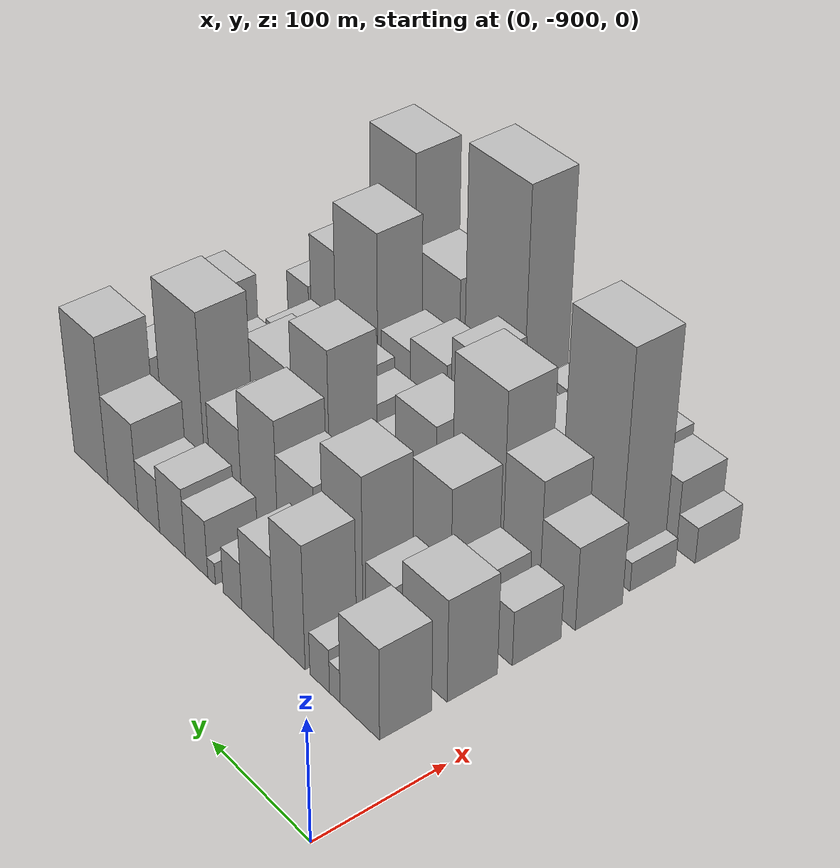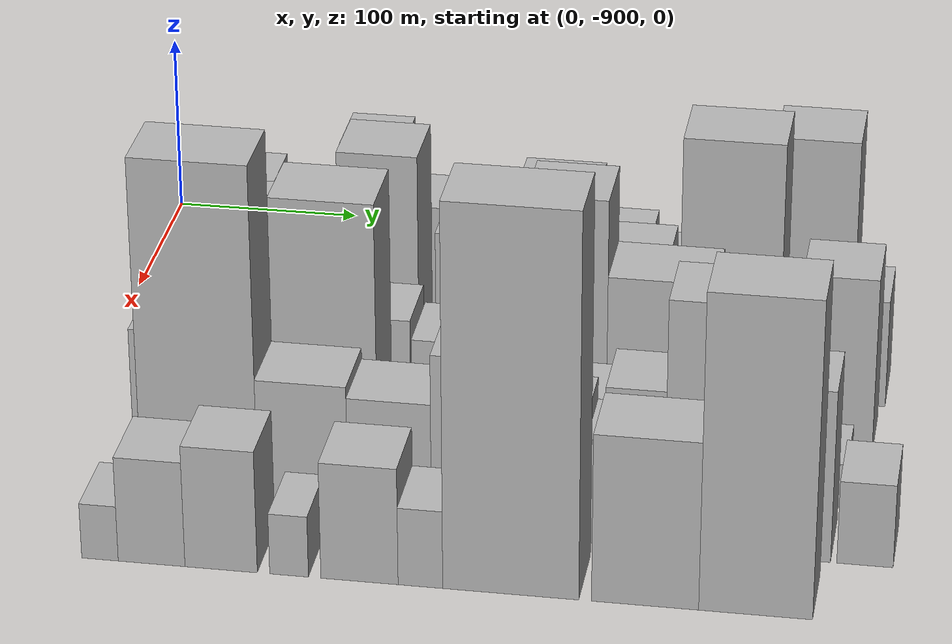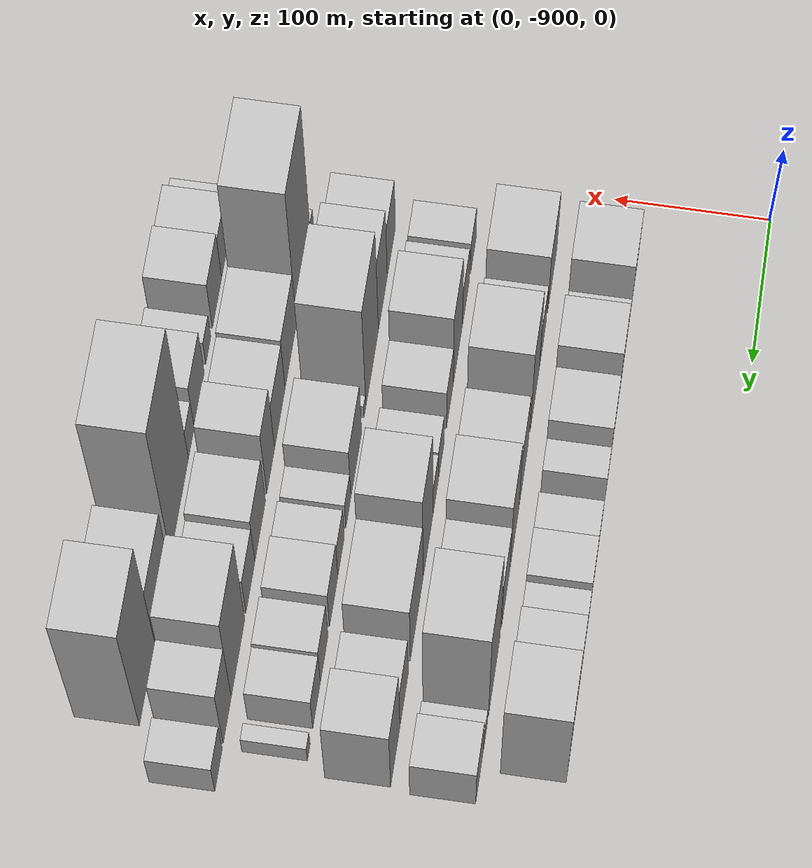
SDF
<sdf version="1.6">
 <world name="default">
  <model name="building_1">
   <static>1</static>
   <pose>100.0000 -840.2048 0 0.000000 0.000000 0.000000</pose>
   <link name="link">
    <pose>0 0 37.50 0 0 0</pose>
    <collision name="collision"><geometry><box><size>40.0000 39.5904 75.0000</size></box></geometry></collision>
    <visual name="visual">
     <cast_shadows>0</cast_shadows>
     <geometry><box><size>40.0000 39.5904 75.0000</size></box></geometry>
     <material>
      <script>
       <uri>model://HANNAS_wall/materials/scripts</uri>
       <uri>model://HANNAS_wall/materials/textures</uri>
       <name>vrc/HANNAS_wall</name>
      </script>
     </material>
    </visual>
   </link>
  </model>
  <model name="building_2">
   <static>1</static>
   <pose>100.0000 -814.9266 0 0.000000 0.000000 0.000000</pose>
   <link name="link">
    <pose>0 0 13.50 0 0 0</pose>
    <collision name="collision"><geometry><box><size>40.0000 10.9660 27.0000</size></box></geometry></collision>
    <visual name="visual">
     <cast_shadows>0</cast_shadows>
     <geometry><box><size>40.0000 10.9660 27.0000</size></box></geometry>
     <material>
      <script>
       <uri>model://HANNAS_wall/materials/scripts</uri>
       <uri>model://HANNAS_wall/materials/textures</uri>
       <name>vrc/HANNAS_wall</name>
      </script>
     </material>
    </visual>
   </link>
  </model>
  <model name="building_3">
   <static>1</static>
   <pose>100.0000 -799.1964 0 0.000000 0.000000 0.000000</pose>
   <link name="link">
    <pose>0 0 18.00 0 0 0</pose>
    <collision name="collision"><geometry><box><size>40.0000 20.4942 36.0000</size></box></geometry></collision>
    <visual name="visual">
     <cast_shadows>0</cast_shadows>
     <geometry><box><size>40.0000 20.4942 36.0000</size></box></geometry>
     <material>
      <script>
       <uri>model://HANNAS_wall/materials/scripts</uri>
       <uri>model://HANNAS_wall/materials/textures</uri>
       <name>vrc/HANNAS_wall</name>
      </script>
     </material>
    </visual>
   </link>
  </model>
  <model name="building_4">
   <static>1</static>
   <pose>100.0000 -767.1937 0 0.000000 0.000000 0.000000</pose>
   <link name="link">
    <pose>0 0 51.00 0 0 0</pose>
    <collision name="collision"><geometry><box><size>40.0000 33.5113 102.0000</size></box></geometry></collision>
    <visual name="visual">
     <cast_shadows>0</cast_shadows>
     <geometry><box><size>40.0000 33.5113 102.0000</size></box></geometry>
     <material>
      <script>
       <uri>model://HANNAS_wall/materials/scripts</uri>
       <uri>model://HANNAS_wall/materials/textures</uri>
       <name>vrc/HANNAS_wall</name>
      </script>
     </material>
    </visual>
   </link>
  </model>
  <model name="building_5">
   <static>1</static>
   <pose>100.0000 -732.7986 0 0.000000 0.000000 0.000000</pose>
   <link name="link">
    <pose>0 0 34.50 0 0 0</pose>
    <collision name="collision"><geometry><box><size>40.0000 35.2789 69.0000</size></box></geometry></collision>
    <visual name="visual">
     <cast_shadows>0</cast_shadows>
     <geometry><box><size>40.0000 35.2789 69.0000</size></box></geometry>
     <material>
      <script>
       <uri>model://HANNAS_wall/materials/scripts</uri>
       <uri>model://HANNAS_wall/materials/textures</uri>
       <name>vrc/HANNAS_wall</name>
      </script>
     </material>
    </visual>
   </link>
  </model>
  <model name="building_6">
   <static>1</static>
   <pose>100.0000 -704.6048 0 0.000000 0.000000 0.000000</pose>
   <link name="link">
    <pose>0 0 19.50 0 0 0</pose>
    <collision name="collision"><geometry><box><size>40.0000 21.1087 39.0000</size></box></geometry></collision>
    <visual name="visual">
     <cast_shadows>0</cast_shadows>
     <geometry><box><size>40.0000 21.1087 39.0000</size></box></geometry>
     <material>
      <script>
       <uri>model://HANNAS_wall/materials/scripts</uri>
       <uri>model://HANNAS_wall/materials/textures</uri>
       <name>vrc/HANNAS_wall</name>
      </script>
     </material>
    </visual>
   </link>
  </model>
  <model name="building_7">
   <static>1</static>
   <pose>100.0000 -680.6913 0 0.000000 0.000000 0.000000</pose>
   <link name="link">
    <pose>0 0 9.00 0 0 0</pose>
    <collision name="collision"><geometry><box><size>40.0000 8.7182 18.0000</size></box></geometry></collision>
    <visual name="visual">
     <cast_shadows>0</cast_shadows>
     <geometry><box><size>40.0000 8.7182 18.0000</size></box></geometry>
     <material>
      <script>
       <uri>model://HANNAS_wall/materials/scripts</uri>
       <uri>model://HANNAS_wall/materials/textures</uri>
       <name>vrc/HANNAS_wall</name>
      </script>
     </material>
    </visual>
   </link>
  </model>
  <model name="building_8">
   <static>1</static>
   <pose>100.0000 -663.1396 0 0.000000 0.000000 0.000000</pose>
   <link name="link">
    <pose>0 0 24.00 0 0 0</pose>
    <collision name="collision"><geometry><box><size>40.0000 26.3853 48.0000</size></box></geometry></collision>
    <visual name="visual">
     <cast_shadows>0</cast_shadows>
     <geometry><box><size>40.0000 26.3853 48.0000</size></box></geometry>
     <material>
      <script>
       <uri>model://HANNAS_wall/materials/scripts</uri>
       <uri>model://HANNAS_wall/materials/textures</uri>
       <name>vrc/HANNAS_wall</name>
      </script>
     </material>
    </visual>
   </link>
  </model>
  <model name="building_9">
   <static>1</static>
   <pose>100.0000 -634.6680 0 0.000000 0.000000 0.000000</pose>
   <link name="link">
    <pose>0 0 28.50 0 0 0</pose>
    <collision name="collision"><geometry><box><size>40.0000 30.5580 57.0000</size></box></geometry></collision>
    <visual name="visual">
     <cast_shadows>0</cast_shadows>
     <geometry><box><size>40.0000 30.5580 57.0000</size></box></geometry>
     <material>
      <script>
       <uri>model://HANNAS_wall/materials/scripts</uri>
       <uri>model://HANNAS_wall/materials/textures</uri>
       <name>vrc/HANNAS_wall</name>
      </script>
     </material>
    </visual>
   </link>
  </model>
  <model name="building_10">
   <static>1</static>
   <pose>100.0000 -606.2961 0 0.000000 0.000000 0.000000</pose>
   <link name="link">
    <pose>0 0 22.50 0 0 0</pose>
    <collision name="collision"><geometry><box><size>40.0000 26.1857 45.0000</size></box></geometry></collision>
    <visual name="visual">
     <cast_shadows>0</cast_shadows>
     <geometry><box><size>40.0000 26.1857 45.0000</size></box></geometry>
     <material>
      <script>
       <uri>model://HANNAS_wall/materials/scripts</uri>
       <uri>model://HANNAS_wall/materials/textures</uri>
       <name>vrc/HANNAS_wall</name>
      </script>
     </material>
    </visual>
   </link>
  </model>
  <model name="building_11">
   <static>1</static>
   <pose>100.0000 -574.1782 0 0.000000 0.000000 0.000000</pose>
   <link name="link">
    <pose>0 0 37.50 0 0 0</pose>
    <collision name="collision"><geometry><box><size>40.0000 38.0501 75.0000</size></box></geometry></collision>
    <visual name="visual">
     <cast_shadows>0</cast_shadows>
     <geometry><box><size>40.0000 38.0501 75.0000</size></box></geometry>
     <material>
      <script>
       <uri>model://HANNAS_wall/materials/scripts</uri>
       <uri>model://HANNAS_wall/materials/textures</uri>
       <name>vrc/HANNAS_wall</name>
      </script>
     </material>
    </visual>
   </link>
  </model>
  <model name="building_12">
   <static>1</static>
   <pose>100.0000 -533.4060 0 0.000000 0.000000 0.000000</pose>
   <link name="link">
    <pose>0 0 61.50 0 0 0</pose>
    <collision name="collision"><geometry><box><size>40.0000 43.4944 123.0000</size></box></geometry></collision>
    <visual name="visual">
     <cast_shadows>0</cast_shadows>
     <geometry><box><size>40.0000 43.4944 123.0000</size></box></geometry>
     <material>
      <script>
       <uri>model://HANNAS_wall/materials/scripts</uri>
       <uri>model://HANNAS_wall/materials/textures</uri>
       <name>vrc/HANNAS_wall</name>
      </script>
     </material>
    </visual>
   </link>
  </model>
  <model name="building_52">
   <static>1</static>
   <pose>152.0000 -837.6055 0 0.000000 0.000000 0.000000</pose>
   <link name="link">
    <pose>0 0 42.00 0 0 0</pose>
    <collision name="collision"><geometry><box><size>40.0000 44.7890 84.0000</size></box></geometry></collision>
    <visual name="visual">
     <cast_shadows>0</cast_shadows>
     <geometry><box><size>40.0000 44.7890 84.0000</size></box></geometry>
     <material>
      <script>
       <uri>model://HANNAS_wall/materials/scripts</uri>
       <uri>model://HANNAS_wall/materials/textures</uri>
       <name>vrc/HANNAS_wall</name>
      </script>
     </material>
    </visual>
   </link>
  </model>
  <model name="building_53">
   <static>1</static>
   <pose>152.0000 -793.0308 0 0.000000 0.000000 0.000000</pose>
   <link name="link">
    <pose>0 0 28.50 0 0 0</pose>
    <collision name="collision"><geometry><box><size>40.0000 30.3604 57.0000</size></box></geometry></collision>
    <visual name="visual">
     <cast_shadows>0</cast_shadows>
     <geometry><box><size>40.0000 30.3604 57.0000</size></box></geometry>
     <material>
      <script>
       <uri>model://HANNAS_wall/materials/scripts</uri>
       <uri>model://HANNAS_wall/materials/textures</uri>
       <name>vrc/HANNAS_wall</name>
      </script>
     </material>
    </visual>
   </link>
  </model>
  <model name="building_54">
   <static>1</static>
   <pose>152.0000 -753.9375 0 0.000000 0.000000 0.000000</pose>
   <link name="link">
    <pose>0 0 61.50 0 0 0</pose>
    <collision name="collision"><geometry><box><size>40.0000 41.8262 123.0000</size></box></geometry></collision>
    <visual name="visual">
     <cast_shadows>0</cast_shadows>
     <geometry><box><size>40.0000 41.8262 123.0000</size></box></geometry>
     <material>
      <script>
       <uri>model://HANNAS_wall/materials/scripts</uri>
       <uri>model://HANNAS_wall/materials/textures</uri>
       <name>vrc/HANNAS_wall</name>
      </script>
     </material>
    </visual>
   </link>
  </model>
  <model name="building_55">
   <static>1</static>
   <pose>152.0000 -703.2747 0 0.000000 0.000000 0.000000</pose>
   <link name="link">
    <pose>0 0 40.50 0 0 0</pose>
    <collision name="collision"><geometry><box><size>40.0000 41.4992 81.0000</size></box></geometry></collision>
    <visual name="visual">
     <cast_shadows>0</cast_shadows>
     <geometry><box><size>40.0000 41.4992 81.0000</size></box></geometry>
     <material>
      <script>
       <uri>model://HANNAS_wall/materials/scripts</uri>
       <uri>model://HANNAS_wall/materials/textures</uri>
       <name>vrc/HANNAS_wall</name>
      </script>
     </material>
    </visual>
   </link>
  </model>
  <model name="building_56">
   <static>1</static>
   <pose>152.0000 -661.7789 0 0.000000 0.000000 0.000000</pose>
   <link name="link">
    <pose>0 0 54.00 0 0 0</pose>
    <collision name="collision"><geometry><box><size>40.0000 41.4925 108.0000</size></box></geometry></collision>
    <visual name="visual">
     <cast_shadows>0</cast_shadows>
     <geometry><box><size>40.0000 41.4925 108.0000</size></box></geometry>
     <material>
      <script>
       <uri>model://HANNAS_wall/materials/scripts</uri>
       <uri>model://HANNAS_wall/materials/textures</uri>
       <name>vrc/HANNAS_wall</name>
      </script>
     </material>
    </visual>
   </link>
  </model>
  <model name="building_57">
   <static>1</static>
   <pose>152.0000 -622.2637 0 0.000000 0.000000 0.000000</pose>
   <link name="link">
    <pose>0 0 37.50 0 0 0</pose>
    <collision name="collision"><geometry><box><size>40.0000 37.5379 75.0000</size></box></geometry></collision>
    <visual name="visual">
     <cast_shadows>0</cast_shadows>
     <geometry><box><size>40.0000 37.5379 75.0000</size></box></geometry>
     <material>
      <script>
       <uri>model://HANNAS_wall/materials/scripts</uri>
       <uri>model://HANNAS_wall/materials/textures</uri>
       <name>vrc/HANNAS_wall</name>
      </script>
     </material>
    </visual>
   </link>
  </model>
  <model name="building_58">
   <static>1</static>
   <pose>152.0000 -571.5455 0 0.000000 0.000000 0.000000</pose>
   <link name="link">
    <pose>0 0 72.00 0 0 0</pose>
    <collision name="collision"><geometry><box><size>40.0000 51.8986 144.0000</size></box></geometry></collision>
    <visual name="visual">
     <cast_shadows>0</cast_shadows>
     <geometry><box><size>40.0000 51.8986 144.0000</size></box></geometry>
     <material>
      <script>
       <uri>model://HANNAS_wall/materials/scripts</uri>
       <uri>model://HANNAS_wall/materials/textures</uri>
       <name>vrc/HANNAS_wall</name>
      </script>
     </material>
    </visual>
   </link>
  </model>
  <model name="building_59">
   <static>1</static>
   <pose>152.0000 -532.0537 0 0.000000 0.000000 0.000000</pose>
   <link name="link">
    <pose>0 0 15.00 0 0 0</pose>
    <collision name="collision"><geometry><box><size>40.0000 17.0849 30.0000</size></box></geometry></collision>
    <visual name="visual">
     <cast_shadows>0</cast_shadows>
     <geometry><box><size>40.0000 17.0849 30.0000</size></box></geometry>
     <material>
      <script>
       <uri>model://HANNAS_wall/materials/scripts</uri>
       <uri>model://HANNAS_wall/materials/textures</uri>
       <name>vrc/HANNAS_wall</name>
      </script>
     </material>
    </visual>
   </link>
  </model>
  <model name="building_60">
   <static>1</static>
   <pose>152.0000 -507.1141 0 0.000000 0.000000 0.000000</pose>
   <link name="link">
    <pose>0 0 30.00 0 0 0</pose>
    <collision name="collision"><geometry><box><size>40.0000 32.7944 60.0000</size></box></geometry></collision>
    <visual name="visual">
     <cast_shadows>0</cast_shadows>
     <geometry><box><size>40.0000 32.7944 60.0000</size></box></geometry>
     <material>
      <script>
       <uri>model://HANNAS_wall/materials/scripts</uri>
       <uri>model://HANNAS_wall/materials/textures</uri>
       <name>vrc/HANNAS_wall</name>
      </script>
     </material>
    </visual>
   </link>
  </model>
  <model name="building_101">
   <static>1</static>
   <pose>204.0000 -847.4146 0 0.000000 0.000000 0.000000</pose>
   <link name="link">
    <pose>0 0 22.50 0 0 0</pose>
    <collision name="collision"><geometry><box><size>40.0000 25.1708 45.0000</size></box></geometry></collision>
    <visual name="visual">
     <cast_shadows>0</cast_shadows>
     <geometry><box><size>40.0000 25.1708 45.0000</size></box></geometry>
     <material>
      <script>
       <uri>model://HANNAS_wall/materials/scripts</uri>
       <uri>model://HANNAS_wall/materials/textures</uri>
       <name>vrc/HANNAS_wall</name>
      </script>
     </material>
    </visual>
   </link>
  </model>
  <model name="building_102">
   <static>1</static>
   <pose>204.0000 -813.6594 0 0.000000 0.000000 0.000000</pose>
   <link name="link">
    <pose>0 0 25.50 0 0 0</pose>
    <collision name="collision"><geometry><box><size>40.0000 30.3396 51.0000</size></box></geometry></collision>
    <visual name="visual">
     <cast_shadows>0</cast_shadows>
     <geometry><box><size>40.0000 30.3396 51.0000</size></box></geometry>
     <material>
      <script>
       <uri>model://HANNAS_wall/materials/scripts</uri>
       <uri>model://HANNAS_wall/materials/textures</uri>
       <name>vrc/HANNAS_wall</name>
      </script>
     </material>
    </visual>
   </link>
  </model>
  <model name="building_103">
   <static>1</static>
   <pose>204.0000 -778.3625 0 0.000000 0.000000 0.000000</pose>
   <link name="link">
    <pose>0 0 51.00 0 0 0</pose>
    <collision name="collision"><geometry><box><size>40.0000 40.2543 102.0000</size></box></geometry></collision>
    <visual name="visual">
     <cast_shadows>0</cast_shadows>
     <geometry><box><size>40.0000 40.2543 102.0000</size></box></geometry>
     <material>
      <script>
       <uri>model://HANNAS_wall/materials/scripts</uri>
       <uri>model://HANNAS_wall/materials/textures</uri>
       <name>vrc/HANNAS_wall</name>
      </script>
     </material>
    </visual>
   </link>
  </model>
  <model name="building_104">
   <static>1</static>
   <pose>204.0000 -743.1347 0 0.000000 0.000000 0.000000</pose>
   <link name="link">
    <pose>0 0 28.50 0 0 0</pose>
    <collision name="collision"><geometry><box><size>40.0000 30.2014 57.0000</size></box></geometry></collision>
    <visual name="visual">
     <cast_shadows>0</cast_shadows>
     <geometry><box><size>40.0000 30.2014 57.0000</size></box></geometry>
     <material>
      <script>
       <uri>model://HANNAS_wall/materials/scripts</uri>
       <uri>model://HANNAS_wall/materials/textures</uri>
       <name>vrc/HANNAS_wall</name>
      </script>
     </material>
    </visual>
   </link>
  </model>
  <model name="building_105">
   <static>1</static>
   <pose>204.0000 -705.7703 0 0.000000 0.000000 0.000000</pose>
   <link name="link">
    <pose>0 0 22.50 0 0 0</pose>
    <collision name="collision"><geometry><box><size>40.0000 24.5274 45.0000</size></box></geometry></collision>
    <visual name="visual">
     <cast_shadows>0</cast_shadows>
     <geometry><box><size>40.0000 24.5274 45.0000</size></box></geometry>
     <material>
      <script>
       <uri>model://HANNAS_wall/materials/scripts</uri>
       <uri>model://HANNAS_wall/materials/textures</uri>
       <name>vrc/HANNAS_wall</name>
      </script>
     </material>
    </visual>
   </link>
  </model>
  <model name="building_106">
   <static>1</static>
   <pose>204.0000 -681.5198 0 0.000000 0.000000 0.000000</pose>
   <link name="link">
    <pose>0 0 21.00 0 0 0</pose>
    <collision name="collision"><geometry><box><size>40.0000 23.9736 42.0000</size></box></geometry></collision>
    <visual name="visual">
     <cast_shadows>0</cast_shadows>
     <geometry><box><size>40.0000 23.9736 42.0000</size></box></geometry>
     <material>
      <script>
       <uri>model://HANNAS_wall/materials/scripts</uri>
       <uri>model://HANNAS_wall/materials/textures</uri>
       <name>vrc/HANNAS_wall</name>
      </script>
     </material>
    </visual>
   </link>
  </model>
  <model name="building_107">
   <static>1</static>
   <pose>204.0000 -648.7119 0 0.000000 0.000000 0.000000</pose>
   <link name="link">
    <pose>0 0 66.00 0 0 0</pose>
    <collision name="collision"><geometry><box><size>40.0000 41.6421 132.0000</size></box></geometry></collision>
    <visual name="visual">
     <cast_shadows>0</cast_shadows>
     <geometry><box><size>40.0000 41.6421 132.0000</size></box></geometry>
     <material>
      <script>
       <uri>model://HANNAS_wall/materials/scripts</uri>
       <uri>model://HANNAS_wall/materials/textures</uri>
       <name>vrc/HANNAS_wall</name>
      </script>
     </material>
    </visual>
   </link>
  </model>
  <model name="building_108">
   <static>1</static>
   <pose>204.0000 -600.9972 0 0.000000 0.000000 0.000000</pose>
   <link name="link">
    <pose>0 0 45.00 0 0 0</pose>
    <collision name="collision"><geometry><box><size>40.0000 53.7873 90.0000</size></box></geometry></collision>
    <visual name="visual">
     <cast_shadows>0</cast_shadows>
     <geometry><box><size>40.0000 53.7873 90.0000</size></box></geometry>
     <material>
      <script>
       <uri>model://HANNAS_wall/materials/scripts</uri>
       <uri>model://HANNAS_wall/materials/textures</uri>
       <name>vrc/HANNAS_wall</name>
      </script>
     </material>
    </visual>
   </link>
  </model>
  <model name="building_109">
   <static>1</static>
   <pose>204.0000 -548.8163 0 0.000000 0.000000 0.000000</pose>
   <link name="link">
    <pose>0 0 31.50 0 0 0</pose>
    <collision name="collision"><geometry><box><size>40.0000 34.5743 63.0000</size></box></geometry></collision>
    <visual name="visual">
     <cast_shadows>0</cast_shadows>
     <geometry><box><size>40.0000 34.5743 63.0000</size></box></geometry>
     <material>
      <script>
       <uri>model://HANNAS_wall/materials/scripts</uri>
       <uri>model://HANNAS_wall/materials/textures</uri>
       <name>vrc/HANNAS_wall</name>
      </script>
     </material>
    </visual>
   </link>
  </model>
  <model name="building_110">
   <static>1</static>
   <pose>204.0000 -512.5766 0 0.000000 0.000000 0.000000</pose>
   <link name="link">
    <pose>0 0 49.50 0 0 0</pose>
    <collision name="collision"><geometry><box><size>40.0000 37.9052 99.0000</size></box></geometry></collision>
    <visual name="visual">
     <cast_shadows>0</cast_shadows>
     <geometry><box><size>40.0000 37.9052 99.0000</size></box></geometry>
     <material>
      <script>
       <uri>model://HANNAS_wall/materials/scripts</uri>
       <uri>model://HANNAS_wall/materials/textures</uri>
       <name>vrc/HANNAS_wall</name>
      </script>
     </material>
    </visual>
   </link>
  </model>
  <model name="building_151">
   <static>1</static>
   <pose>256.0000 -842.4005 0 0.000000 0.000000 0.000000</pose>
   <link name="link">
    <pose>0 0 34.50 0 0 0</pose>
    <collision name="collision"><geometry><box><size>40.0000 35.1991 69.0000</size></box></geometry></collision>
    <visual name="visual">
     <cast_shadows>0</cast_shadows>
     <geometry><box><size>40.0000 35.1991 69.0000</size></box></geometry>
     <material>
      <script>
       <uri>model://HANNAS_wall/materials/scripts</uri>
       <uri>model://HANNAS_wall/materials/textures</uri>
       <name>vrc/HANNAS_wall</name>
      </script>
     </material>
    </visual>
   </link>
  </model>
  <model name="building_152">
   <static>1</static>
   <pose>256.0000 -806.2439 0 0.000000 0.000000 0.000000</pose>
   <link name="link">
    <pose>0 0 49.50 0 0 0</pose>
    <collision name="collision"><geometry><box><size>40.0000 37.1141 99.0000</size></box></geometry></collision>
    <visual name="visual">
     <cast_shadows>0</cast_shadows>
     <geometry><box><size>40.0000 37.1141 99.0000</size></box></geometry>
     <material>
      <script>
       <uri>model://HANNAS_wall/materials/scripts</uri>
       <uri>model://HANNAS_wall/materials/textures</uri>
       <name>vrc/HANNAS_wall</name>
      </script>
     </material>
    </visual>
   </link>
  </model>
  <model name="building_153">
   <static>1</static>
   <pose>256.0000 -761.5578 0 0.000000 0.000000 0.000000</pose>
   <link name="link">
    <pose>0 0 73.50 0 0 0</pose>
    <collision name="collision"><geometry><box><size>40.0000 52.2581 147.0000</size></box></geometry></collision>
    <visual name="visual">
     <cast_shadows>0</cast_shadows>
     <geometry><box><size>40.0000 52.2581 147.0000</size></box></geometry>
     <material>
      <script>
       <uri>model://HANNAS_wall/materials/scripts</uri>
       <uri>model://HANNAS_wall/materials/textures</uri>
       <name>vrc/HANNAS_wall</name>
      </script>
     </material>
    </visual>
   </link>
  </model>
  <model name="building_154">
   <static>1</static>
   <pose>256.0000 -731.6071 0 0.000000 0.000000 0.000000</pose>
   <link name="link">
    <pose>0 0 9.00 0 0 0</pose>
    <collision name="collision"><geometry><box><size>40.0000 7.6433 18.0000</size></box></geometry></collision>
    <visual name="visual">
     <cast_shadows>0</cast_shadows>
     <geometry><box><size>40.0000 7.6433 18.0000</size></box></geometry>
     <material>
      <script>
       <uri>model://HANNAS_wall/materials/scripts</uri>
       <uri>model://HANNAS_wall/materials/textures</uri>
       <name>vrc/HANNAS_wall</name>
      </script>
     </material>
    </visual>
   </link>
  </model>
  <model name="building_155">
   <static>1</static>
   <pose>256.0000 -695.9349 0 0.000000 0.000000 0.000000</pose>
   <link name="link">
    <pose>0 0 37.50 0 0 0</pose>
    <collision name="collision"><geometry><box><size>40.0000 43.7011 75.0000</size></box></geometry></collision>
    <visual name="visual">
     <cast_shadows>0</cast_shadows>
     <geometry><box><size>40.0000 43.7011 75.0000</size></box></geometry>
     <material>
      <script>
       <uri>model://HANNAS_wall/materials/scripts</uri>
       <uri>model://HANNAS_wall/materials/textures</uri>
       <name>vrc/HANNAS_wall</name>
      </script>
     </material>
    </visual>
   </link>
  </model>
  <model name="building_156">
   <static>1</static>
   <pose>256.0000 -663.7842 0 0.000000 0.000000 0.000000</pose>
   <link name="link">
    <pose>0 0 19.50 0 0 0</pose>
    <collision name="collision"><geometry><box><size>40.0000 20.6002 39.0000</size></box></geometry></collision>
    <visual name="visual">
     <cast_shadows>0</cast_shadows>
     <geometry><box><size>40.0000 20.6002 39.0000</size></box></geometry>
     <material>
      <script>
       <uri>model://HANNAS_wall/materials/scripts</uri>
       <uri>model://HANNAS_wall/materials/textures</uri>
       <name>vrc/HANNAS_wall</name>
      </script>
     </material>
    </visual>
   </link>
  </model>
  <model name="building_157">
   <static>1</static>
   <pose>256.0000 -634.5247 0 0.000000 0.000000 0.000000</pose>
   <link name="link">
    <pose>0 0 24.00 0 0 0</pose>
    <collision name="collision"><geometry><box><size>40.0000 25.9189 48.0000</size></box></geometry></collision>
    <visual name="visual">
     <cast_shadows>0</cast_shadows>
     <geometry><box><size>40.0000 25.9189 48.0000</size></box></geometry>
     <material>
      <script>
       <uri>model://HANNAS_wall/materials/scripts</uri>
       <uri>model://HANNAS_wall/materials/textures</uri>
       <name>vrc/HANNAS_wall</name>
      </script>
     </material>
    </visual>
   </link>
  </model>
  <model name="building_158">
   <static>1</static>
   <pose>256.0000 -605.0497 0 0.000000 0.000000 0.000000</pose>
   <link name="link">
    <pose>0 0 28.50 0 0 0</pose>
    <collision name="collision"><geometry><box><size>40.0000 33.0310 57.0000</size></box></geometry></collision>
    <visual name="visual">
     <cast_shadows>0</cast_shadows>
     <geometry><box><size>40.0000 33.0310 57.0000</size></box></geometry>
     <material>
      <script>
       <uri>model://HANNAS_wall/materials/scripts</uri>
       <uri>model://HANNAS_wall/materials/textures</uri>
       <name>vrc/HANNAS_wall</name>
      </script>
     </material>
    </visual>
   </link>
  </model>
  <model name="building_159">
   <static>1</static>
   <pose>256.0000 -567.5535 0 0.000000 0.000000 0.000000</pose>
   <link name="link">
    <pose>0 0 28.50 0 0 0</pose>
    <collision name="collision"><geometry><box><size>40.0000 29.9615 57.0000</size></box></geometry></collision>
    <visual name="visual">
     <cast_shadows>0</cast_shadows>
     <geometry><box><size>40.0000 29.9615 57.0000</size></box></geometry>
     <material>
      <script>
       <uri>model://HANNAS_wall/materials/scripts</uri>
       <uri>model://HANNAS_wall/materials/textures</uri>
       <name>vrc/HANNAS_wall</name>
      </script>
     </material>
    </visual>
   </link>
  </model>
  <model name="building_160">
   <static>1</static>
   <pose>256.0000 -537.9096 0 0.000000 0.000000 0.000000</pose>
   <link name="link">
    <pose>0 0 25.50 0 0 0</pose>
    <collision name="collision"><geometry><box><size>40.0000 29.3264 51.0000</size></box></geometry></collision>
    <visual name="visual">
     <cast_shadows>0</cast_shadows>
     <geometry><box><size>40.0000 29.3264 51.0000</size></box></geometry>
     <material>
      <script>
       <uri>model://HANNAS_wall/materials/scripts</uri>
       <uri>model://HANNAS_wall/materials/textures</uri>
       <name>vrc/HANNAS_wall</name>
      </script>
     </material>
    </visual>
   </link>
  </model>
  <model name="building_161">
   <static>1</static>
   <pose>256.0000 -507.9276 0 0.000000 0.000000 0.000000</pose>
   <link name="link">
    <pose>0 0 12.00 0 0 0</pose>
    <collision name="collision"><geometry><box><size>40.0000 10.6376 24.0000</size></box></geometry></collision>
    <visual name="visual">
     <cast_shadows>0</cast_shadows>
     <geometry><box><size>40.0000 10.6376 24.0000</size></box></geometry>
     <material>
      <script>
       <uri>model://HANNAS_wall/materials/scripts</uri>
       <uri>model://HANNAS_wall/materials/textures</uri>
       <name>vrc/HANNAS_wall</name>
      </script>
     </material>
    </visual>
   </link>
  </model>
  <model name="building_202">
   <static>1</static>
   <pose>308.0000 -848.4929 0 0.000000 0.000000 0.000000</pose>
   <link name="link">
    <pose>0 0 12.00 0 0 0</pose>
    <collision name="collision"><geometry><box><size>40.0000 11.0143 24.0000</size></box></geometry></collision>
    <visual name="visual">
     <cast_shadows>0</cast_shadows>
     <geometry><box><size>40.0000 11.0143 24.0000</size></box></geometry>
     <material>
      <script>
       <uri>model://HANNAS_wall/materials/scripts</uri>
       <uri>model://HANNAS_wall/materials/textures</uri>
       <name>vrc/HANNAS_wall</name>
      </script>
     </material>
    </visual>
   </link>
  </model>
  <model name="building_203">
   <static>1</static>
   <pose>308.0000 -813.9056 0 0.000000 0.000000 0.000000</pose>
   <link name="link">
    <pose>0 0 94.50 0 0 0</pose>
    <collision name="collision"><geometry><box><size>40.0000 58.1603 189.0000</size></box></geometry></collision>
    <visual name="visual">
     <cast_shadows>0</cast_shadows>
     <geometry><box><size>40.0000 58.1603 189.0000</size></box></geometry>
     <material>
      <script>
       <uri>model://HANNAS_wall/materials/scripts</uri>
       <uri>model://HANNAS_wall/materials/textures</uri>
       <name>vrc/HANNAS_wall</name>
      </script>
     </material>
    </visual>
   </link>
  </model>
  <model name="building_204">
   <static>1</static>
   <pose>308.0000 -762.4992 0 0.000000 0.000000 0.000000</pose>
   <link name="link">
    <pose>0 0 37.50 0 0 0</pose>
    <collision name="collision"><geometry><box><size>40.0000 44.6525 75.0000</size></box></geometry></collision>
    <visual name="visual">
     <cast_shadows>0</cast_shadows>
     <geometry><box><size>40.0000 44.6525 75.0000</size></box></geometry>
     <material>
      <script>
       <uri>model://HANNAS_wall/materials/scripts</uri>
       <uri>model://HANNAS_wall/materials/textures</uri>
       <name>vrc/HANNAS_wall</name>
      </script>
     </material>
    </visual>
   </link>
  </model>
  <model name="building_205">
   <static>1</static>
   <pose>308.0000 -719.6796 0 0.000000 0.000000 0.000000</pose>
   <link name="link">
    <pose>0 0 34.50 0 0 0</pose>
    <collision name="collision"><geometry><box><size>40.0000 40.9866 69.0000</size></box></geometry></collision>
    <visual name="visual">
     <cast_shadows>0</cast_shadows>
     <geometry><box><size>40.0000 40.9866 69.0000</size></box></geometry>
     <material>
      <script>
       <uri>model://HANNAS_wall/materials/scripts</uri>
       <uri>model://HANNAS_wall/materials/textures</uri>
       <name>vrc/HANNAS_wall</name>
      </script>
     </material>
    </visual>
   </link>
  </model>
  <model name="building_206">
   <static>1</static>
   <pose>308.0000 -684.0709 0 0.000000 0.000000 0.000000</pose>
   <link name="link">
    <pose>0 0 48.00 0 0 0</pose>
    <collision name="collision"><geometry><box><size>40.0000 30.2308 96.0000</size></box></geometry></collision>
    <visual name="visual">
     <cast_shadows>0</cast_shadows>
     <geometry><box><size>40.0000 30.2308 96.0000</size></box></geometry>
     <material>
      <script>
       <uri>model://HANNAS_wall/materials/scripts</uri>
       <uri>model://HANNAS_wall/materials/textures</uri>
       <name>vrc/HANNAS_wall</name>
      </script>
     </material>
    </visual>
   </link>
  </model>
  <model name="building_207">
   <static>1</static>
   <pose>308.0000 -643.8758 0 0.000000 0.000000 0.000000</pose>
   <link name="link">
    <pose>0 0 34.50 0 0 0</pose>
    <collision name="collision"><geometry><box><size>40.0000 40.1595 69.0000</size></box></geometry></collision>
    <visual name="visual">
     <cast_shadows>0</cast_shadows>
     <geometry><box><size>40.0000 40.1595 69.0000</size></box></geometry>
     <material>
      <script>
       <uri>model://HANNAS_wall/materials/scripts</uri>
       <uri>model://HANNAS_wall/materials/textures</uri>
       <name>vrc/HANNAS_wall</name>
      </script>
     </material>
    </visual>
   </link>
  </model>
  <model name="building_208">
   <static>1</static>
   <pose>308.0000 -606.8368 0 0.000000 0.000000 0.000000</pose>
   <link name="link">
    <pose>0 0 28.50 0 0 0</pose>
    <collision name="collision"><geometry><box><size>40.0000 33.9184 57.0000</size></box></geometry></collision>
    <visual name="visual">
     <cast_shadows>0</cast_shadows>
     <geometry><box><size>40.0000 33.9184 57.0000</size></box></geometry>
     <material>
      <script>
       <uri>model://HANNAS_wall/materials/scripts</uri>
       <uri>model://HANNAS_wall/materials/textures</uri>
       <name>vrc/HANNAS_wall</name>
      </script>
     </material>
    </visual>
   </link>
  </model>
  <model name="building_209">
   <static>1</static>
   <pose>308.0000 -560.7116 0 0.000000 0.000000 0.000000</pose>
   <link name="link">
    <pose>0 0 67.50 0 0 0</pose>
    <collision name="collision"><geometry><box><size>40.0000 50.3319 135.0000</size></box></geometry></collision>
    <visual name="visual">
     <cast_shadows>0</cast_shadows>
     <geometry><box><size>40.0000 50.3319 135.0000</size></box></geometry>
     <material>
      <script>
       <uri>model://HANNAS_wall/materials/scripts</uri>
       <uri>model://HANNAS_wall/materials/textures</uri>
       <name>vrc/HANNAS_wall</name>
      </script>
     </material>
    </visual>
   </link>
  </model>
  <model name="building_210">
   <static>1</static>
   <pose>308.0000 -520.6116 0 0.000000 0.000000 0.000000</pose>
   <link name="link">
    <pose>0 0 46.50 0 0 0</pose>
    <collision name="collision"><geometry><box><size>40.0000 29.8681 93.0000</size></box></geometry></collision>
    <visual name="visual">
     <cast_shadows>0</cast_shadows>
     <geometry><box><size>40.0000 29.8681 93.0000</size></box></geometry>
     <material>
      <script>
       <uri>model://HANNAS_wall/materials/scripts</uri>
       <uri>model://HANNAS_wall/materials/textures</uri>
       <name>vrc/HANNAS_wall</name>
      </script>
     </material>
    </visual>
   </link>
  </model>
  <model name="building_211">
   <static>1</static>
   <pose>308.0000 -489.2294 0 0.000000 0.000000 0.000000</pose>
   <link name="link">
    <pose>0 0 22.50 0 0 0</pose>
    <collision name="collision"><geometry><box><size>40.0000 26.8963 45.0000</size></box></geometry></collision>
    <visual name="visual">
     <cast_shadows>0</cast_shadows>
     <geometry><box><size>40.0000 26.8963 45.0000</size></box></geometry>
     <material>
      <script>
       <uri>model://HANNAS_wall/materials/scripts</uri>
       <uri>model://HANNAS_wall/materials/textures</uri>
       <name>vrc/HANNAS_wall</name>
      </script>
     </material>
    </visual>
   </link>
  </model>
  <model name="building_251">
   <static>1</static>
   <pose>360.0000 -851.0437 0 0.000000 0.000000 0.000000</pose>
   <link name="link">
    <pose>0 0 15.00 0 0 0</pose>
    <collision name="collision"><geometry><box><size>40.0000 17.9126 30.0000</size></box></geometry></collision>
    <visual name="visual">
     <cast_shadows>0</cast_shadows>
     <geometry><box><size>40.0000 17.9126 30.0000</size></box></geometry>
     <material>
      <script>
       <uri>model://HANNAS_wall/materials/scripts</uri>
       <uri>model://HANNAS_wall/materials/textures</uri>
       <name>vrc/HANNAS_wall</name>
      </script>
     </material>
    </visual>
   </link>
  </model>
  <model name="building_252">
   <static>1</static>
   <pose>360.0000 -825.7474 0 0.000000 0.000000 0.000000</pose>
   <link name="link">
    <pose>0 0 28.50 0 0 0</pose>
    <collision name="collision"><geometry><box><size>40.0000 32.6800 57.0000</size></box></geometry></collision>
    <visual name="visual">
     <cast_shadows>0</cast_shadows>
     <geometry><box><size>40.0000 32.6800 57.0000</size></box></geometry>
     <material>
      <script>
       <uri>model://HANNAS_wall/materials/scripts</uri>
       <uri>model://HANNAS_wall/materials/textures</uri>
       <name>vrc/HANNAS_wall</name>
      </script>
     </material>
    </visual>
   </link>
  </model>
  <model name="building_253">
   <static>1</static>
   <pose>360.0000 -791.7869 0 0.000000 0.000000 0.000000</pose>
   <link name="link">
    <pose>0 0 33.00 0 0 0</pose>
    <collision name="collision"><geometry><box><size>40.0000 35.2411 66.0000</size></box></geometry></collision>
    <visual name="visual">
     <cast_shadows>0</cast_shadows>
     <geometry><box><size>40.0000 35.2411 66.0000</size></box></geometry>
     <material>
      <script>
       <uri>model://HANNAS_wall/materials/scripts</uri>
       <uri>model://HANNAS_wall/materials/textures</uri>
       <name>vrc/HANNAS_wall</name>
      </script>
     </material>
    </visual>
   </link>
  </model>
  <model name="building_254">
   <static>1</static>
   <pose>360.0000 -758.7695 0 0.000000 0.000000 0.000000</pose>
   <link name="link">
    <pose>0 0 16.50 0 0 0</pose>
    <collision name="collision"><geometry><box><size>40.0000 18.7937 33.0000</size></box></geometry></collision>
    <visual name="visual">
     <cast_shadows>0</cast_shadows>
     <geometry><box><size>40.0000 18.7937 33.0000</size></box></geometry>
     <material>
      <script>
       <uri>model://HANNAS_wall/materials/scripts</uri>
       <uri>model://HANNAS_wall/materials/textures</uri>
       <name>vrc/HANNAS_wall</name>
      </script>
     </material>
    </visual>
   </link>
  </model>
  <model name="building_255">
   <static>1</static>
   <pose>360.0000 -724.7372 0 0.000000 0.000000 0.000000</pose>
   <link name="link">
    <pose>0 0 31.50 0 0 0</pose>
    <collision name="collision"><geometry><box><size>40.0000 37.2709 63.0000</size></box></geometry></collision>
    <visual name="visual">
     <cast_shadows>0</cast_shadows>
     <geometry><box><size>40.0000 37.2709 63.0000</size></box></geometry>
     <material>
      <script>
       <uri>model://HANNAS_wall/materials/scripts</uri>
       <uri>model://HANNAS_wall/materials/textures</uri>
       <name>vrc/HANNAS_wall</name>
      </script>
     </material>
    </visual>
   </link>
  </model>
  <model name="building_256">
   <static>1</static>
   <pose>360.0000 -695.3985 0 0.000000 0.000000 0.000000</pose>
   <link name="link">
    <pose>0 0 21.00 0 0 0</pose>
    <collision name="collision"><geometry><box><size>40.0000 21.4065 42.0000</size></box></geometry></collision>
    <visual name="visual">
     <cast_shadows>0</cast_shadows>
     <geometry><box><size>40.0000 21.4065 42.0000</size></box></geometry>
     <material>
      <script>
       <uri>model://HANNAS_wall/materials/scripts</uri>
       <uri>model://HANNAS_wall/materials/textures</uri>
       <name>vrc/HANNAS_wall</name>
      </script>
     </material>
    </visual>
   </link>
  </model>
  <model name="building_257">
   <static>1</static>
   <pose>360.0000 -652.2283 0 0.000000 0.000000 0.000000</pose>
   <link name="link">
    <pose>0 0 102.00 0 0 0</pose>
    <collision name="collision"><geometry><box><size>40.0000 64.9341 204.0000</size></box></geometry></collision>
    <visual name="visual">
     <cast_shadows>0</cast_shadows>
     <geometry><box><size>40.0000 64.9341 204.0000</size></box></geometry>
     <material>
      <script>
       <uri>model://HANNAS_wall/materials/scripts</uri>
       <uri>model://HANNAS_wall/materials/textures</uri>
       <name>vrc/HANNAS_wall</name>
      </script>
     </material>
    </visual>
   </link>
  </model>
  <model name="building_258">
   <static>1</static>
   <pose>360.0000 -588.4409 0 0.000000 0.000000 0.000000</pose>
   <link name="link">
    <pose>0 0 45.00 0 0 0</pose>
    <collision name="collision"><geometry><box><size>40.0000 50.6406 90.0000</size></box></geometry></collision>
    <visual name="visual">
     <cast_shadows>0</cast_shadows>
     <geometry><box><size>40.0000 50.6406 90.0000</size></box></geometry>
     <material>
      <script>
       <uri>model://HANNAS_wall/materials/scripts</uri>
       <uri>model://HANNAS_wall/materials/textures</uri>
       <name>vrc/HANNAS_wall</name>
      </script>
     </material>
    </visual>
   </link>
  </model>
  <model name="building_259">
   <static>1</static>
   <pose>360.0000 -536.3799 0 0.000000 0.000000 0.000000</pose>
   <link name="link">
    <pose>0 0 84.00 0 0 0</pose>
    <collision name="collision"><geometry><box><size>40.0000 53.4813 168.0000</size></box></geometry></collision>
    <visual name="visual">
     <cast_shadows>0</cast_shadows>
     <geometry><box><size>40.0000 53.4813 168.0000</size></box></geometry>
     <material>
      <script>
       <uri>model://HANNAS_wall/materials/scripts</uri>
       <uri>model://HANNAS_wall/materials/textures</uri>
       <name>vrc/HANNAS_wall</name>
      </script>
     </material>
    </visual>
   </link>
  </model>
 </world>
</sdf>
